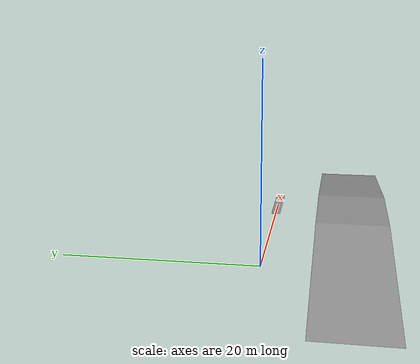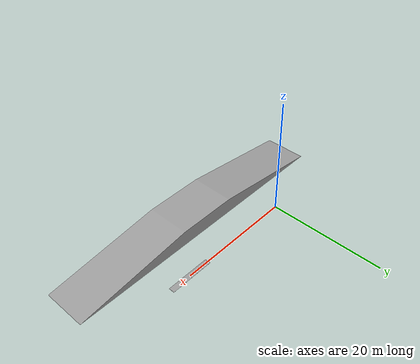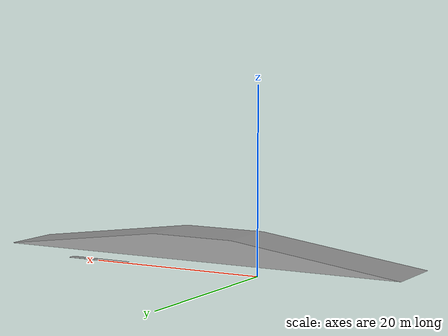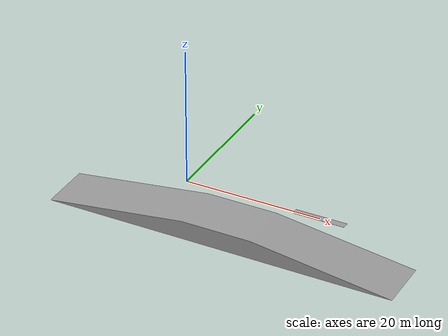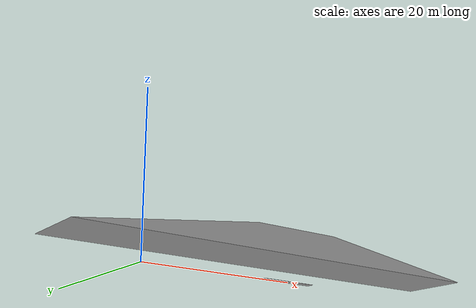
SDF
<?xml version='1.0'?>
<sdf version='1.7'>
  <model name='Hill'>
    <link name='link_0'>
      <inertial>
        <mass>1</mass>
        <inertia>
          <ixx>0.166667</ixx>
          <ixy>0</ixy>
          <ixz>0</ixz>
          <iyy>0.166667</iyy>
          <iyz>0</iyz>
          <izz>0.166667</izz>
        </inertia>
        <pose>0 0 0 0 -0 0</pose>
      </inertial>
      <pose>8e-06 -3.6e-05 -0.02 0 -0 0</pose>
      <self_collide>0</self_collide>
      <enable_wind>0</enable_wind>
      <kinematic>0</kinematic>
      <gravity>0</gravity>
      <visual name='visual'>
        <pose>0 0 0 0 -0 0</pose>
        <geometry>
          <mesh>
            <uri>/home/yg/ros2/Ros2Projects/OOM_Self-driving-car/src/ros2_term_project/3dfile/언덕구간.stl</uri>
            <scale>0.2 0.25 0.25</scale>
          </mesh>
        </geometry>
        <material>
          <lighting>1</lighting>
          <script>
            <uri>file://media/materials/scripts/gazebo.material</uri>
            <name>Gazebo/Grey</name>
          </script>
          <shader type='pixel'>
            <normal_map>__default__</normal_map>
          </shader>
          <ambient>0.3 0.3 0.3 1</ambient>
          <diffuse>0.7 0.7 0.7 1</diffuse>
          <specular>0.01 0.01 0.01 1</specular>
          <emissive>0 0 0 1</emissive>
        </material>
        <transparency>0</transparency>
        <cast_shadows>1</cast_shadows>
      </visual>
      <collision name='collision'>
        <laser_retro>0</laser_retro>
        <max_contacts>10</max_contacts>
        <pose>0 0 0 0 -0 0</pose>
        <geometry>
          <mesh>
            <uri>/home/yg/ros2/Ros2Projects/OOM_Self-driving-car/src/ros2_term_project/3dfile/언덕구간.stl</uri>
            <scale>1 1 1</scale>
          </mesh>
        </geometry>
        <surface>
          <friction>
            <ode>
              <mu>1</mu>
              <mu2>1</mu2>
              <fdir1>0 0 0</fdir1>
              <slip1>0</slip1>
              <slip2>0</slip2>
            </ode>
            <torsional>
              <coefficient>1</coefficient>
              <patch_radius>0</patch_radius>
              <surface_radius>0</surface_radius>
              <use_patch_radius>1</use_patch_radius>
              <ode>
                <slip>0</slip>
              </ode>
            </torsional>
          </friction>
          <bounce>
            <restitution_coefficient>0</restitution_coefficient>
            <threshold>1e+06</threshold>
          </bounce>
          <contact>
            <collide_without_contact>0</collide_without_contact>
            <collide_without_contact_bitmask>1</collide_without_contact_bitmask>
            <collide_bitmask>1</collide_bitmask>
            <ode>
              <soft_cfm>0</soft_cfm>
              <soft_erp>0.2</soft_erp>
              <kp>1e+13</kp>
              <kd>1</kd>
              <max_vel>0.01</max_vel>
              <min_depth>0</min_depth>
            </ode>
            <bullet>
              <split_impulse>1</split_impulse>
              <split_impulse_penetration_threshold>-0.01</split_impulse_penetration_threshold>
              <soft_cfm>0</soft_cfm>
              <soft_erp>0.2</soft_erp>
              <kp>1e+13</kp>
              <kd>1</kd>
            </bullet>
          </contact>
        </surface>
      </collision>
    </link>
    <link name='stop_line'>
      <pose>20 2e-06 0.1 0 -0 0</pose>
      <self_collide>0</self_collide>
      <inertial>
        <pose>0 0 0 0 -0 0</pose>
        <inertia>
          <ixx>1</ixx>
          <ixy>0</ixy>
          <ixz>0</ixz>
          <iyy>1</iyy>
          <iyz>0</iyz>
          <izz>1</izz>
        </inertia>
        <mass>1</mass>
      </inertial>
      <enable_wind>0</enable_wind>
      <kinematic>0</kinematic>
      <gravity>0</gravity>
      <visual name='visual'>
        <pose>0 0 0 0 -0 0</pose>
        <geometry>
          <box>
            <size>7.5 1 0.01</size>
          </box>
        </geometry>
        <material>
          <script>
            <uri>file://media/materials/scripts/gazebo.material</uri>
            <name>Gazebo/Grey</name>
          </script>
          <ambient>1 1 1 1</ambient>
          <diffuse>1 1 1 1</diffuse>
          <specular>0.01 0.01 0.01 1</specular>
          <emissive>0 0 0 1</emissive>
          <shader type='pixel'>
            <normal_map>__default__</normal_map>
          </shader>
        </material>
        <transparency>0</transparency>
        <cast_shadows>1</cast_shadows>
      </visual>
      <collision name='collision'>
        <laser_retro>0</laser_retro>
        <max_contacts>10</max_contacts>
        <pose>0 0 0 0 -0 0</pose>
        <geometry>
          <box>
            <size>0.2 0.1 0.01</size>
          </box>
        </geometry>
        <surface>
          <friction>
            <ode>
              <mu>1</mu>
              <mu2>1</mu2>
              <fdir1>0 0 0</fdir1>
              <slip1>0</slip1>
              <slip2>0</slip2>
            </ode>
            <torsional>
              <coefficient>1</coefficient>
              <patch_radius>0</patch_radius>
              <surface_radius>0</surface_radius>
              <use_patch_radius>1</use_patch_radius>
              <ode>
                <slip>0</slip>
              </ode>
            </torsional>
          </friction>
          <bounce>
            <restitution_coefficient>0</restitution_coefficient>
            <threshold>1e+06</threshold>
          </bounce>
          <contact>
            <collide_without_contact>0</collide_without_contact>
            <collide_without_contact_bitmask>1</collide_without_contact_bitmask>
            <collide_bitmask>1</collide_bitmask>
            <ode>
              <soft_cfm>0</soft_cfm>
              <soft_erp>0.2</soft_erp>
              <kp>1e+13</kp>
              <kd>1</kd>
              <max_vel>0.01</max_vel>
              <min_depth>0</min_depth>
            </ode>
            <bullet>
              <split_impulse>1</split_impulse>
              <split_impulse_penetration_threshold>-0.01</split_impulse_penetration_threshold>
              <soft_cfm>0</soft_cfm>
              <soft_erp>0.2</soft_erp>
              <kp>1e+13</kp>
              <kd>1</kd>
            </bullet>
          </contact>
        </surface>
      </collision>
    </link>
    <static>0</static>
    <allow_auto_disable>1</allow_auto_disable>
  </model>
</sdf>
